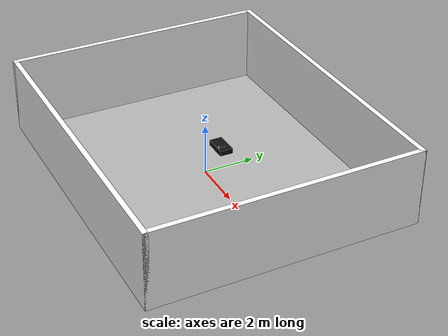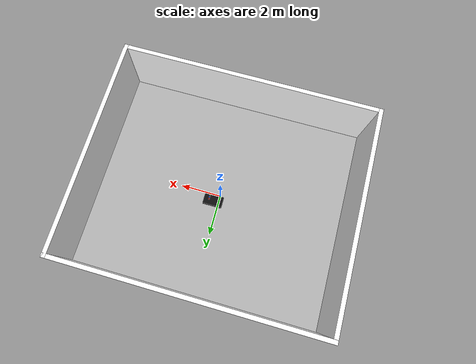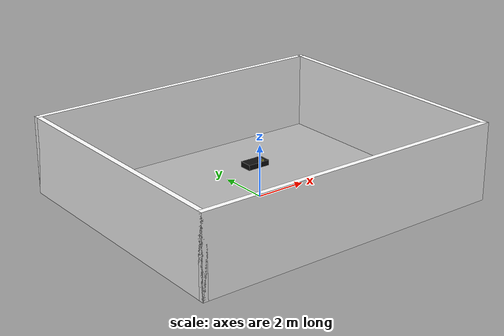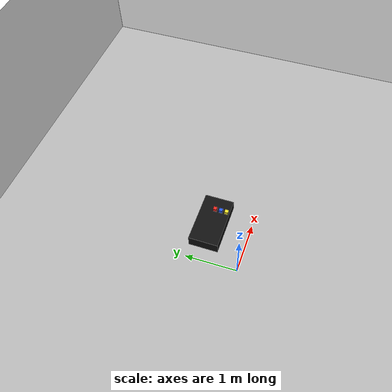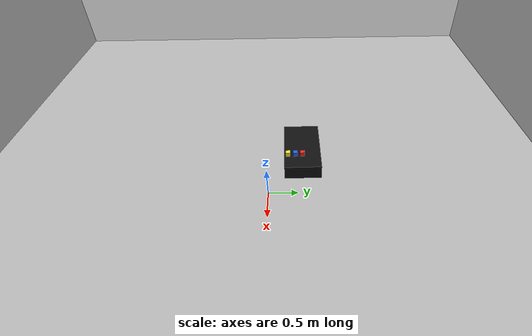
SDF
<sdf version="1.10">
 <world name="lab_table_coke">
  <physics type="ode">
   <max_step_size>0.001</max_step_size>
   <real_time_factor>1</real_time_factor>
   <real_time_update_rate>1000</real_time_update_rate>
  </physics>
  <gravity>0 0 -9.81</gravity>
  <plugin filename="gz-sim-physics-system" name="gz::sim::systems::Physics"/>
  <plugin filename="gz-sim-sensors-system" name="gz::sim::systems::Sensors">
   <render_engine>ogre2</render_engine>
  </plugin>
  <plugin filename="gz-sim-user-commands-system" name="gz::sim::systems::UserCommands"/>
  <plugin filename="gz-sim-scene-broadcaster-system" name="gz::sim::systems::SceneBroadcaster"/>
  <plugin filename="gz-sim-contact-system" name="gz::sim::systems::Contact"/>
  <scene><ambient>0.5 0.5 0.52 1</ambient><background>0.8 0.85 0.9 1</background><shadows>1</shadows></scene>
  <light name="sun" type="directional">
   <pose>0 0 10 0 0 0</pose>
   <diffuse>0.95 0.95 0.95 1</diffuse>
   <specular>0.3 0.3 0.3 1</specular>
   <direction>-0.3 0.2 -1</direction>
  </light>
  <model name="ground_plane">
   <static>true</static>
   <link name="link">
    <collision name="collision">
     <geometry><plane><normal>0 0 1</normal><size>12 10</size></plane></geometry>
     <surface><friction><ode><mu>4.0</mu><mu2>4.0</mu2></ode></friction></surface>
    </collision>
    <visual name="visual">
     <geometry><mesh><uri>model://factory_floor/meshes/floor_plane.obj</uri><scale>1 1 1</scale></mesh></geometry>
     <material>
      <ambient>0.5 0.5 0.5 1</ambient>
      <diffuse>0.7 0.7 0.7 1</diffuse>
      <specular>0.2 0.2 0.2 1</specular>
      <pbr>
       <metal>
        <albedo_map>model://factory_floor/materials/textures/floor.jpg</albedo_map>
        <roughness>0.8</roughness>
       </metal>
      </pbr>
     </material>
    </visual>
   </link>
  </model>
  <model name="factory_walls">
   <static>true</static>
   <link name="link">
    <collision name="wall_north">
     <pose>0 5.1 1.5 0 0 0</pose>
     <geometry><box><size>12.4 0.2 3</size></box></geometry>
    </collision>
    <visual name="wall_north_vis">
     <pose>0 5.1 1.5 0 0 0</pose>
     <geometry><box><size>12.4 0.2 3</size></box></geometry>
     <material>
      <ambient>1 1 1 1</ambient>
      <diffuse>1 1 1 1</diffuse>
      <specular>0.12 0.12 0.12 1</specular>
      <pbr>
       <metal>
        <albedo_map>model://factory_floor/materials/textures/wall.png</albedo_map>
        <roughness>0.85</roughness>
       </metal>
      </pbr>
     </material>
    </visual>
    <collision name="wall_south">
     <pose>0 -5.1 1.5 0 0 0</pose>
     <geometry><box><size>12.4 0.2 3</size></box></geometry>
    </collision>
    <visual name="wall_south_vis">
     <pose>0 -5.1 1.5 0 0 0</pose>
     <geometry><box><size>12.4 0.2 3</size></box></geometry>
     <material>
      <ambient>1 1 1 1</ambient>
      <diffuse>1 1 1 1</diffuse>
      <specular>0.12 0.12 0.12 1</specular>
      <pbr>
       <metal>
        <albedo_map>model://factory_floor/materials/textures/wall.png</albedo_map>
        <roughness>0.85</roughness>
       </metal>
      </pbr>
     </material>
    </visual>
    <collision name="wall_east">
     <pose>6.1 0 1.5 0 0 0</pose>
     <geometry><box><size>0.2 10.4 3</size></box></geometry>
    </collision>
    <visual name="wall_east_vis">
     <pose>6.1 0 1.5 0 0 0</pose>
     <geometry><box><size>0.2 10.4 3</size></box></geometry>
     <material>
      <ambient>1 1 1 1</ambient>
      <diffuse>1 1 1 1</diffuse>
      <specular>0.12 0.12 0.12 1</specular>
      <pbr>
       <metal>
        <albedo_map>model://factory_floor/materials/textures/wall.png</albedo_map>
        <roughness>0.85</roughness>
       </metal>
      </pbr>
     </material>
    </visual>
    <collision name="wall_west">
     <pose>-6.1 0 1.5 0 0 0</pose>
     <geometry><box><size>0.2 10.4 3</size></box></geometry>
    </collision>
    <visual name="wall_west_vis">
     <pose>-6.1 0 1.5 0 0 0</pose>
     <geometry><box><size>0.2 10.4 3</size></box></geometry>
     <material>
      <ambient>1 1 1 1</ambient>
      <diffuse>1 1 1 1</diffuse>
      <specular>0.12 0.12 0.12 1</specular>
      <pbr>
       <metal>
        <albedo_map>model://factory_floor/materials/textures/wall.png</albedo_map>
        <roughness>0.85</roughness>
       </metal>
      </pbr>
     </material>
    </visual>
   </link>
  </model>
  <model name="grasp_cube_platform">
   <static>true</static>
   <pose>0.2 0.55 1.08 0 0 0</pose>
   <link name="link">
    <collision name="collision"><geometry><box><size>0.9 0.5 0.2</size></box></geometry></collision>
    <visual name="visual">
     <geometry><box><size>0.9 0.5 0.2</size></box></geometry>
     <material>
      <ambient>0.05 0.05 0.05 1</ambient>
      <diffuse>0.06 0.06 0.06 1</diffuse>
      <specular>0.12 0.12 0.12 1</specular>
     </material>
    </visual>
   </link>
  </model>
  <model name="grasp_cube_red">
   <static>false</static>
   <pose>0.4 0.55 1.21 0 0 0</pose>
   <link name="link">
    <inertial>
     <mass>0.27</mass>
     <inertia><ixx>1.62e-4</ixx><ixy>0</ixy><ixz>0</ixz><iyy>1.62e-4</iyy><iyz>0</iyz><izz>1.62e-4</izz></inertia>
    </inertial>
    <collision name="collision">
     <geometry><box><size>0.06 0.06 0.06</size></box></geometry>
     <surface><friction><ode><mu>1.0</mu><mu2>1.0</mu2></ode></friction></surface>
    </collision>
    <visual name="visual">
     <geometry><box><size>0.06 0.06 0.06</size></box></geometry>
     <material>
      <ambient>0.85 0.1 0.1 1</ambient>
      <diffuse>0.9 0.15 0.12 1</diffuse>
      <specular>0.3 0.2 0.2 1</specular>
     </material>
    </visual>
   </link>
  </model>
  <model name="grasp_cube_blue">
   <static>false</static>
   <pose>0.4 0.45 1.21 0 0 0</pose>
   <link name="link">
    <inertial>
     <mass>0.27</mass>
     <inertia><ixx>1.62e-4</ixx><ixy>0</ixy><ixz>0</ixz><iyy>1.62e-4</iyy><iyz>0</iyz><izz>1.62e-4</izz></inertia>
    </inertial>
    <collision name="collision">
     <geometry><box><size>0.06 0.06 0.06</size></box></geometry>
     <surface><friction><ode><mu>1.0</mu><mu2>1.0</mu2></ode></friction></surface>
    </collision>
    <visual name="visual">
     <geometry><box><size>0.06 0.06 0.06</size></box></geometry>
     <material>
      <ambient>0.1 0.25 0.85 1</ambient>
      <diffuse>0.15 0.35 0.95 1</diffuse>
      <specular>0.25 0.25 0.35 1</specular>
     </material>
    </visual>
   </link>
  </model>
  <model name="grasp_cube_yellow">
   <static>false</static>
   <pose>0.4 0.35 1.21 0 0 0</pose>
   <link name="link">
    <inertial>
     <mass>0.27</mass>
     <inertia><ixx>1.62e-4</ixx><ixy>0</ixy><ixz>0</ixz><iyy>1.62e-4</iyy><iyz>0</iyz><izz>1.62e-4</izz></inertia>
    </inertial>
    <collision name="collision">
     <geometry><box><size>0.06 0.06 0.06</size></box></geometry>
     <surface><friction><ode><mu>1.0</mu><mu2>1.0</mu2></ode></friction></surface>
    </collision>
    <visual name="visual">
     <geometry><box><size>0.06 0.06 0.06</size></box></geometry>
     <material>
      <ambient>0.9 0.82 0.1 1</ambient>
      <diffuse>0.95 0.88 0.15 1</diffuse>
      <specular>0.35 0.35 0.2 1</specular>
     </material>
    </visual>
   </link>
  </model>
 </world>
</sdf>
